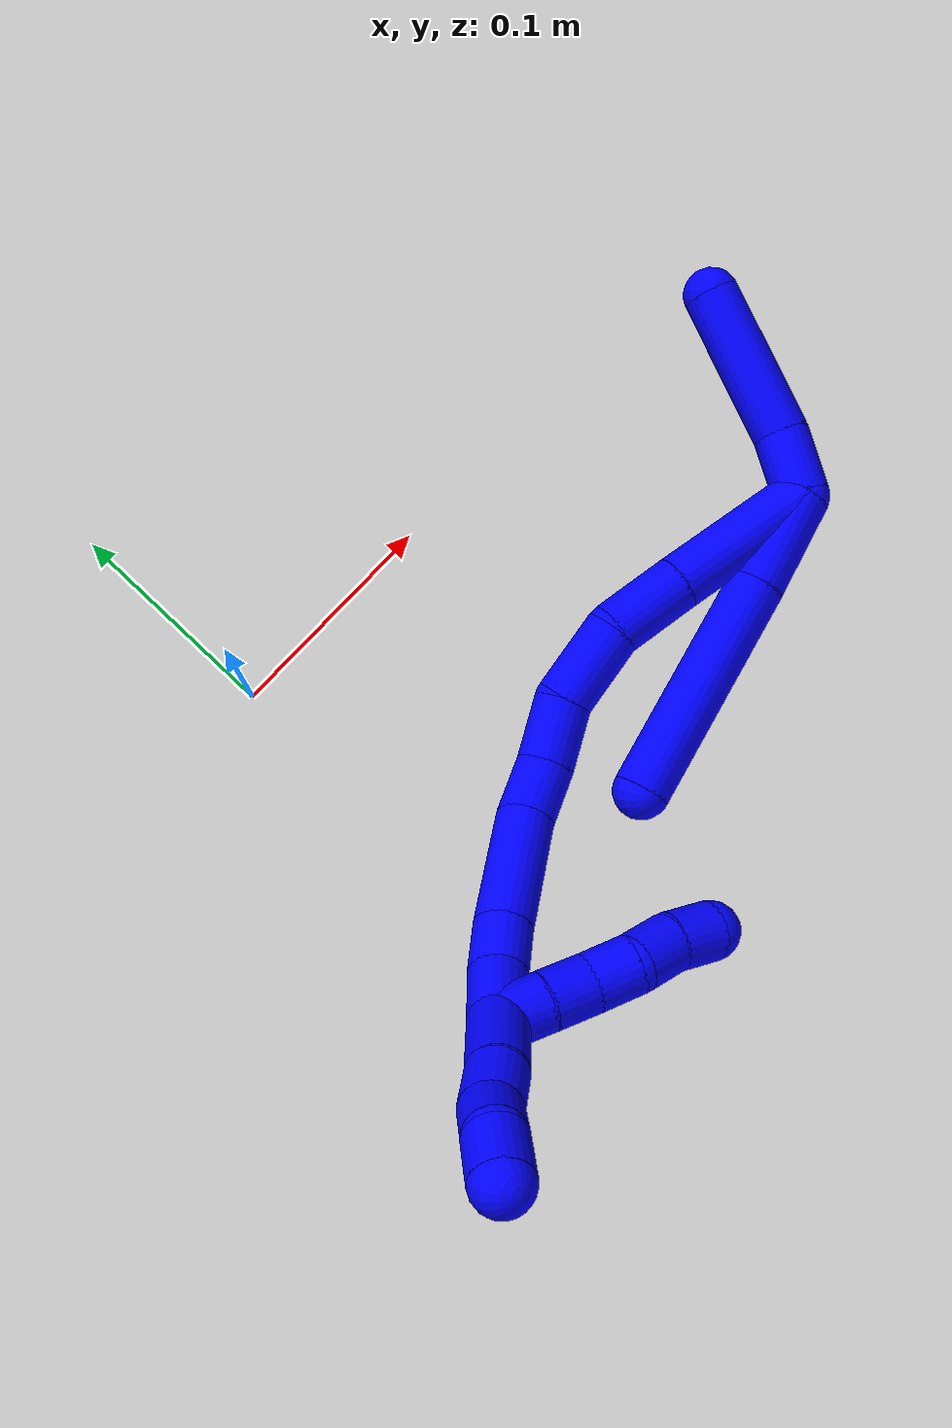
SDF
<sdf version="1.7">
 <world name="default">
  <model name="1">
   <static>0</static>
   <link name="1">
    <collision name="collision-cylinder-e_1_2_8">
     <pose>-0.022529 -0.004162 0.000281 1.50346 -1.38773 -1.32192</pose>
     <geometry><cylinder><radius>0.0125</radius><length>0.045823</length></cylinder></geometry>
     <surface>
      <friction><ode><mu>1.16</mu><mu2>1.16</mu2><slip1>0</slip1><slip2>0</slip2></ode></friction>
      <contact><ode><kp>1e+06</kp><kd>1</kd><max_vel>0</max_vel><min_depth>0.001</min_depth></ode></contact>
     </surface>
    </collision>
    <visual name="visual-cylinder-e_1_2_8">
     <pose>-0.022529 -0.004162 0.000281 1.50346 -1.38773 -1.32192</pose>
     <geometry><cylinder><radius>0.0125</radius><length>0.045823</length></cylinder></geometry>
     <material><ambient>0 0 1 1</ambient></material>
    </visual>
    <collision name="collision-cylinder-e_2_8_6">
     <pose>-0.096458 -0.016731 -0.000133 1.65324 -1.40811 -1.49001</pose>
     <geometry><cylinder><radius>0.0125</radius><length>0.104177</length></cylinder></geometry>
     <surface>
      <friction><ode><mu>1.16</mu><mu2>1.16</mu2><slip1>0</slip1><slip2>0</slip2></ode></friction>
      <contact><ode><kp>1e+06</kp><kd>1</kd><max_vel>0</max_vel><min_depth>0.001</min_depth></ode></contact>
     </surface>
    </collision>
    <visual name="visual-cylinder-e_2_8_6">
     <pose>-0.096458 -0.016731 -0.000133 1.65324 -1.40811 -1.49001</pose>
     <geometry><cylinder><radius>0.0125</radius><length>0.104177</length></cylinder></geometry>
     <material><ambient>0 0 1 1</ambient></material>
    </visual>
    <collision name="collision-cylinder-e_1_2_9">
     <pose>0.008943 0.00982 -0.006396 -2.1481 0.651829 -1.11498</pose>
     <geometry><cylinder><radius>0.0125</radius><length>0.029482</length></cylinder></geometry>
     <surface>
      <friction><ode><mu>1.16</mu><mu2>1.16</mu2><slip1>0</slip1><slip2>0</slip2></ode></friction>
      <contact><ode><kp>1e+06</kp><kd>1</kd><max_vel>0</max_vel><min_depth>0.001</min_depth></ode></contact>
     </surface>
    </collision>
    <visual name="visual-cylinder-e_1_2_9">
     <pose>0.008943 0.00982 -0.006396 -2.1481 0.651829 -1.11498</pose>
     <geometry><cylinder><radius>0.0125</radius><length>0.029482</length></cylinder></geometry>
     <material><ambient>0 0 1 1</ambient></material>
    </visual>
    <collision name="collision-cylinder-e_2_9_5">
     <pose>0.033833 0.047378 -0.027604 -2.06127 0.469348 -0.75877</pose>
     <geometry><cylinder><radius>0.0125</radius><length>0.070518</length></cylinder></geometry>
     <surface>
      <friction><ode><mu>1.16</mu><mu2>1.16</mu2><slip1>0</slip1><slip2>0</slip2></ode></friction>
      <contact><ode><kp>1e+06</kp><kd>1</kd><max_vel>0</max_vel><min_depth>0.001</min_depth></ode></contact>
     </surface>
    </collision>
    <visual name="visual-cylinder-e_2_9_5">
     <pose>0.033833 0.047378 -0.027604 -2.06127 0.469348 -0.75877</pose>
     <geometry><cylinder><radius>0.0125</radius><length>0.070518</length></cylinder></geometry>
     <material><ambient>0 0 1 1</ambient></material>
    </visual>
    <collision name="collision-cylinder-e_1_2_10">
     <pose>-0.033212 0.007775 -0.006934 -2.29911 -1.26684 2.04591</pose>
     <geometry><cylinder><radius>0.0125</radius><length>0.069616</length></cylinder></geometry>
     <surface>
      <friction><ode><mu>1.16</mu><mu2>1.16</mu2><slip1>0</slip1><slip2>0</slip2></ode></friction>
      <contact><ode><kp>1e+06</kp><kd>1</kd><max_vel>0</max_vel><min_depth>0.001</min_depth></ode></contact>
     </surface>
    </collision>
    <visual name="visual-cylinder-e_1_2_10">
     <pose>-0.033212 0.007775 -0.006934 -2.29911 -1.26684 2.04591</pose>
     <geometry><cylinder><radius>0.0125</radius><length>0.069616</length></cylinder></geometry>
     <material><ambient>0 0 1 1</ambient></material>
    </visual>
    <collision name="collision-cylinder-e_2_10_11">
     <pose>-0.083585 0.019199 -0.017356 -2.33344 -1.28473 2.1032</pose>
     <geometry><cylinder><radius>0.0125</radius><length>0.035774</length></cylinder></geometry>
     <surface>
      <friction><ode><mu>1.16</mu><mu2>1.16</mu2><slip1>0</slip1><slip2>0</slip2></ode></friction>
      <contact><ode><kp>1e+06</kp><kd>1</kd><max_vel>0</max_vel><min_depth>0.001</min_depth></ode></contact>
     </surface>
    </collision>
    <visual name="visual-cylinder-e_2_10_11">
     <pose>-0.083585 0.019199 -0.017356 -2.33344 -1.28473 2.1032</pose>
     <geometry><cylinder><radius>0.0125</radius><length>0.035774</length></cylinder></geometry>
     <material><ambient>0 0 1 1</ambient></material>
    </visual>
    <collision name="collision-cylinder-e_3_11_12">
     <pose>-0.118895 0.020358 -0.023654 2.41669 -1.36675 -2.26991</pose>
     <geometry><cylinder><radius>0.0125</radius><length>0.037068</length></cylinder></geometry>
     <surface>
      <friction><ode><mu>1.16</mu><mu2>1.16</mu2><slip1>0</slip1><slip2>0</slip2></ode></friction>
      <contact><ode><kp>1e+06</kp><kd>1</kd><max_vel>0</max_vel><min_depth>0.001</min_depth></ode></contact>
     </surface>
    </collision>
    <visual name="visual-cylinder-e_3_11_12">
     <pose>-0.118895 0.020358 -0.023654 2.41669 -1.36675 -2.26991</pose>
     <geometry><cylinder><radius>0.0125</radius><length>0.037068</length></cylinder></geometry>
     <material><ambient>0 0 1 1</ambient></material>
    </visual>
    <collision name="collision-cylinder-e_4_12_13">
     <pose>-0.150417 0.012098 -0.025567 1.41641 -1.15908 -1.0218</pose>
     <geometry><cylinder><radius>0.0125</radius><length>0.029185</length></cylinder></geometry>
     <surface>
      <friction><ode><mu>1.16</mu><mu2>1.16</mu2><slip1>0</slip1><slip2>0</slip2></ode></friction>
      <contact><ode><kp>1e+06</kp><kd>1</kd><max_vel>0</max_vel><min_depth>0.001</min_depth></ode></contact>
     </surface>
    </collision>
    <visual name="visual-cylinder-e_4_12_13">
     <pose>-0.150417 0.012098 -0.025567 1.41641 -1.15908 -1.0218</pose>
     <geometry><cylinder><radius>0.0125</radius><length>0.029185</length></cylinder></geometry>
     <material><ambient>0 0 1 1</ambient></material>
    </visual>
    <collision name="collision-cylinder-e_5_13_14">
     <pose>-0.176233 0.004559 -0.021203 0.471709 -1.26767 -0.349677</pose>
     <geometry><cylinder><radius>0.0125</radius><length>0.026074</length></cylinder></geometry>
     <surface>
      <friction><ode><mu>1.16</mu><mu2>1.16</mu2><slip1>0</slip1><slip2>0</slip2></ode></friction>
      <contact><ode><kp>1e+06</kp><kd>1</kd><max_vel>0</max_vel><min_depth>0.001</min_depth></ode></contact>
     </surface>
    </collision>
    <visual name="visual-cylinder-e_5_13_14">
     <pose>-0.176233 0.004559 -0.021203 0.471709 -1.26767 -0.349677</pose>
     <geometry><cylinder><radius>0.0125</radius><length>0.026074</length></cylinder></geometry>
     <material><ambient>0 0 1 1</ambient></material>
    </visual>
    <collision name="collision-cylinder-e_6_14_15">
     <pose>-0.211501 0.000476 -0.004216 0.16958 -1.02967 -0.096092</pose>
     <geometry><cylinder><radius>0.0125</radius><length>0.053259</length></cylinder></geometry>
     <surface>
      <friction><ode><mu>1.16</mu><mu2>1.16</mu2><slip1>0</slip1><slip2>0</slip2></ode></friction>
      <contact><ode><kp>1e+06</kp><kd>1</kd><max_vel>0</max_vel><min_depth>0.001</min_depth></ode></contact>
     </surface>
    </collision>
    <visual name="visual-cylinder-e_6_14_15">
     <pose>-0.211501 0.000476 -0.004216 0.16958 -1.02967 -0.096092</pose>
     <geometry><cylinder><radius>0.0125</radius><length>0.053259</length></cylinder></geometry>
     <material><ambient>0 0 1 1</ambient></material>
    </visual>
    <collision name="collision-cylinder-e_7_15_16">
     <pose>-0.243531 -0.00251 0.01649 0.093126 -0.905882 -0.045348</pose>
     <geometry><cylinder><radius>0.0125</radius><length>0.023395</length></cylinder></geometry>
     <surface>
      <friction><ode><mu>1.16</mu><mu2>1.16</mu2><slip1>0</slip1><slip2>0</slip2></ode></friction>
      <contact><ode><kp>1e+06</kp><kd>1</kd><max_vel>0</max_vel><min_depth>0.001</min_depth></ode></contact>
     </surface>
    </collision>
    <visual name="visual-cylinder-e_7_15_16">
     <pose>-0.243531 -0.00251 0.01649 0.093126 -0.905882 -0.045348</pose>
     <geometry><cylinder><radius>0.0125</radius><length>0.023395</length></cylinder></geometry>
     <material><ambient>0 0 1 1</ambient></material>
    </visual>
    <collision name="collision-cylinder-e_8_16_1">
     <pose>-0.260879 -0.002385 0.033539 -0.080592 -0.68852 0.028909</pose>
     <geometry><cylinder><radius>0.0125</radius><length>0.025629</length></cylinder></geometry>
     <surface>
      <friction><ode><mu>1.16</mu><mu2>1.16</mu2><slip1>0</slip1><slip2>0</slip2></ode></friction>
      <contact><ode><kp>1e+06</kp><kd>1</kd><max_vel>0</max_vel><min_depth>0.001</min_depth></ode></contact>
     </surface>
    </collision>
    <visual name="visual-cylinder-e_8_16_1">
     <pose>-0.260879 -0.002385 0.033539 -0.080592 -0.68852 0.028909</pose>
     <geometry><cylinder><radius>0.0125</radius><length>0.025629</length></cylinder></geometry>
     <material><ambient>0 0 1 1</ambient></material>
    </visual>
    <collision name="collision-cylinder-e_1_1_17">
     <pose>-0.278454 0.002973 0.058176 -0.299439 -0.547786 0.084712</pose>
     <geometry><cylinder><radius>0.0125</radius><length>0.036225</length></cylinder></geometry>
     <surface>
      <friction><ode><mu>1.16</mu><mu2>1.16</mu2><slip1>0</slip1><slip2>0</slip2></ode></friction>
      <contact><ode><kp>1e+06</kp><kd>1</kd><max_vel>0</max_vel><min_depth>0.001</min_depth></ode></contact>
     </surface>
    </collision>
    <visual name="visual-cylinder-e_1_1_17">
     <pose>-0.278454 0.002973 0.058176 -0.299439 -0.547786 0.084712</pose>
     <geometry><cylinder><radius>0.0125</radius><length>0.036225</length></cylinder></geometry>
     <material><ambient>0 0 1 1</ambient></material>
    </visual>
    <collision name="collision-cylinder-e_2_17_18">
     <pose>-0.294756 0.010151 0.080974 -0.315218 -0.683129 0.112876</pose>
     <geometry><cylinder><radius>0.0125</radius><length>0.021763</length></cylinder></geometry>
     <surface>
      <friction><ode><mu>1.16</mu><mu2>1.16</mu2><slip1>0</slip1><slip2>0</slip2></ode></friction>
      <contact><ode><kp>1e+06</kp><kd>1</kd><max_vel>0</max_vel><min_depth>0.001</min_depth></ode></contact>
     </surface>
    </collision>
    <visual name="visual-cylinder-e_2_17_18">
     <pose>-0.294756 0.010151 0.080974 -0.315218 -0.683129 0.112876</pose>
     <geometry><cylinder><radius>0.0125</radius><length>0.021763</length></cylinder></geometry>
     <material><ambient>0 0 1 1</ambient></material>
    </visual>
    <collision name="collision-cylinder-e_3_18_19">
     <pose>-0.305541 0.015888 0.098092 -0.330553 -0.386881 0.065325</pose>
     <geometry><cylinder><radius>0.0125</radius><length>0.020763</length></cylinder></geometry>
     <surface>
      <friction><ode><mu>1.16</mu><mu2>1.16</mu2><slip1>0</slip1><slip2>0</slip2></ode></friction>
      <contact><ode><kp>1e+06</kp><kd>1</kd><max_vel>0</max_vel><min_depth>0.001</min_depth></ode></contact>
     </surface>
    </collision>
    <visual name="visual-cylinder-e_3_18_19">
     <pose>-0.305541 0.015888 0.098092 -0.330553 -0.386881 0.065325</pose>
     <geometry><cylinder><radius>0.0125</radius><length>0.020763</length></cylinder></geometry>
     <material><ambient>0 0 1 1</ambient></material>
    </visual>
    <collision name="collision-cylinder-e_4_19_4">
     <pose>-0.315362 0.019299 0.116015 -0.032896 -0.589151 0.009982</pose>
     <geometry><cylinder><radius>0.0125</radius><length>0.021249</length></cylinder></geometry>
     <surface>
      <friction><ode><mu>1.16</mu><mu2>1.16</mu2><slip1>0</slip1><slip2>0</slip2></ode></friction>
      <contact><ode><kp>1e+06</kp><kd>1</kd><max_vel>0</max_vel><min_depth>0.001</min_depth></ode></contact>
     </surface>
    </collision>
    <visual name="visual-cylinder-e_4_19_4">
     <pose>-0.315362 0.019299 0.116015 -0.032896 -0.589151 0.009982</pose>
     <geometry><cylinder><radius>0.0125</radius><length>0.021249</length></cylinder></geometry>
     <material><ambient>0 0 1 1</ambient></material>
    </visual>
    <collision name="collision-cylinder-e_1_1_20">
     <pose>-0.260533 -0.00646 0.045457 1.17157 1.01369 0.705897</pose>
     <geometry><cylinder><radius>0.0125</radius><length>0.02</length></cylinder></geometry>
     <surface>
      <friction><ode><mu>1.16</mu><mu2>1.16</mu2><slip1>0</slip1><slip2>0</slip2></ode></friction>
      <contact><ode><kp>1e+06</kp><kd>1</kd><max_vel>0</max_vel><min_depth>0.001</min_depth></ode></contact>
     </surface>
    </collision>
    <visual name="visual-cylinder-e_1_1_20">
     <pose>-0.260533 -0.00646 0.045457 1.17157 1.01369 0.705897</pose>
     <geometry><cylinder><radius>0.0125</radius><length>0.02</length></cylinder></geometry>
     <material><ambient>0 0 1 1</ambient></material>
    </visual>
    <collision name="collision-cylinder-e_2_20_21">
     <pose>-0.243615 -0.01654 0.048856 1.3184 1.00285 0.803274</pose>
     <geometry><cylinder><radius>0.0125</radius><length>0.02</length></cylinder></geometry>
     <surface>
      <friction><ode><mu>1.16</mu><mu2>1.16</mu2><slip1>0</slip1><slip2>0</slip2></ode></friction>
      <contact><ode><kp>1e+06</kp><kd>1</kd><max_vel>0</max_vel><min_depth>0.001</min_depth></ode></contact>
     </surface>
    </collision>
    <visual name="visual-cylinder-e_2_20_21">
     <pose>-0.243615 -0.01654 0.048856 1.3184 1.00285 0.803274</pose>
     <geometry><cylinder><radius>0.0125</radius><length>0.02</length></cylinder></geometry>
     <material><ambient>0 0 1 1</ambient></material>
    </visual>
    <collision name="collision-cylinder-e_3_21_22">
     <pose>-0.226511 -0.026032 0.052731 1.03696 1.0499 0.638274</pose>
     <geometry><cylinder><radius>0.0125</radius><length>0.02</length></cylinder></geometry>
     <surface>
      <friction><ode><mu>1.16</mu><mu2>1.16</mu2><slip1>0</slip1><slip2>0</slip2></ode></friction>
      <contact><ode><kp>1e+06</kp><kd>1</kd><max_vel>0</max_vel><min_depth>0.001</min_depth></ode></contact>
     </surface>
    </collision>
    <visual name="visual-cylinder-e_3_21_22">
     <pose>-0.226511 -0.026032 0.052731 1.03696 1.0499 0.638274</pose>
     <geometry><cylinder><radius>0.0125</radius><length>0.02</length></cylinder></geometry>
     <material><ambient>0 0 1 1</ambient></material>
    </visual>
    <collision name="collision-cylinder-e_4_22_23">
     <pose>-0.209254 -0.035376 0.054413 1.73742 1.03202 1.18151</pose>
     <geometry><cylinder><radius>0.0125</radius><length>0.02</length></cylinder></geometry>
     <surface>
      <friction><ode><mu>1.16</mu><mu2>1.16</mu2><slip1>0</slip1><slip2>0</slip2></ode></friction>
      <contact><ode><kp>1e+06</kp><kd>1</kd><max_vel>0</max_vel><min_depth>0.001</min_depth></ode></contact>
     </surface>
    </collision>
    <visual name="visual-cylinder-e_4_22_23">
     <pose>-0.209254 -0.035376 0.054413 1.73742 1.03202 1.18151</pose>
     <geometry><cylinder><radius>0.0125</radius><length>0.02</length></cylinder></geometry>
     <material><ambient>0 0 1 1</ambient></material>
    </visual>
    <collision name="collision-cylinder-e_5_23_3">
     <pose>-0.19308 -0.046935 0.053931 1.51396 0.86199 0.819625</pose>
     <geometry><cylinder><radius>0.0125</radius><length>0.02</length></cylinder></geometry>
     <surface>
      <friction><ode><mu>1.16</mu><mu2>1.16</mu2><slip1>0</slip1><slip2>0</slip2></ode></friction>
      <contact><ode><kp>1e+06</kp><kd>1</kd><max_vel>0</max_vel><min_depth>0.001</min_depth></ode></contact>
     </surface>
    </collision>
    <visual name="visual-cylinder-e_5_23_3">
     <pose>-0.19308 -0.046935 0.053931 1.51396 0.86199 0.819625</pose>
     <geometry><cylinder><radius>0.0125</radius><length>0.02</length></cylinder></geometry>
     <material><ambient>0 0 1 1</ambient></material>
    </visual>
    <collision name="collision-sphere-3">
     <pose>-0.185488 -0.053434 0.054301 0 -0 0</pose>
     <geometry><sphere><radius>0.0125</radius></sphere></geometry>
     <surface>
      <friction><ode><mu>1.16</mu><mu2>1.16</mu2><slip1>0</slip1><slip2>0</slip2></ode></friction>
      <contact><ode><kp>1e+06</kp><kd>1</kd><max_vel>0</max_vel><min_depth>0.001</min_depth></ode></contact>
     </surface>
    </collision>
    <visual name="visual-sphere-3">
     <pose>-0.185488 -0.053434 0.054301 0 -0 0</pose>
     <geometry><sphere><radius>0.0125</radius></sphere></geometry>
     <material><ambient>0 0 1 1</ambient></material>
    </visual>
    <collision name="collision-sphere-23">
     <pose>-0.200671 -0.040436 0.053562 0 -0 0</pose>
     <geometry><sphere><radius>0.0125</radius></sphere></geometry>
     <surface>
      <friction><ode><mu>1.16</mu><mu2>1.16</mu2><slip1>0</slip1><slip2>0</slip2></ode></friction>
      <contact><ode><kp>1e+06</kp><kd>1</kd><max_vel>0</max_vel><min_depth>0.001</min_depth></ode></contact>
     </surface>
    </collision>
    <visual name="visual-sphere-23">
     <pose>-0.200671 -0.040436 0.053562 0 -0 0</pose>
     <geometry><sphere><radius>0.0125</radius></sphere></geometry>
     <material><ambient>0 0 1 1</ambient></material>
    </visual>
    <collision name="collision-sphere-22">
     <pose>-0.217838 -0.030317 0.055264 0 -0 0</pose>
     <geometry><sphere><radius>0.0125</radius></sphere></geometry>
     <surface>
      <friction><ode><mu>1.16</mu><mu2>1.16</mu2><slip1>0</slip1><slip2>0</slip2></ode></friction>
      <contact><ode><kp>1e+06</kp><kd>1</kd><max_vel>0</max_vel><min_depth>0.001</min_depth></ode></contact>
     </surface>
    </collision>
    <visual name="visual-sphere-22">
     <pose>-0.217838 -0.030317 0.055264 0 -0 0</pose>
     <geometry><sphere><radius>0.0125</radius></sphere></geometry>
     <material><ambient>0 0 1 1</ambient></material>
    </visual>
    <collision name="collision-sphere-21">
     <pose>-0.235185 -0.021748 0.050199 0 -0 0</pose>
     <geometry><sphere><radius>0.0125</radius></sphere></geometry>
     <surface>
      <friction><ode><mu>1.16</mu><mu2>1.16</mu2><slip1>0</slip1><slip2>0</slip2></ode></friction>
      <contact><ode><kp>1e+06</kp><kd>1</kd><max_vel>0</max_vel><min_depth>0.001</min_depth></ode></contact>
     </surface>
    </collision>
    <visual name="visual-sphere-21">
     <pose>-0.235185 -0.021748 0.050199 0 -0 0</pose>
     <geometry><sphere><radius>0.0125</radius></sphere></geometry>
     <material><ambient>0 0 1 1</ambient></material>
    </visual>
    <collision name="collision-sphere-20">
     <pose>-0.252045 -0.011331 0.047513 0 -0 0</pose>
     <geometry><sphere><radius>0.0125</radius></sphere></geometry>
     <surface>
      <friction><ode><mu>1.16</mu><mu2>1.16</mu2><slip1>0</slip1><slip2>0</slip2></ode></friction>
      <contact><ode><kp>1e+06</kp><kd>1</kd><max_vel>0</max_vel><min_depth>0.001</min_depth></ode></contact>
     </surface>
    </collision>
    <visual name="visual-sphere-20">
     <pose>-0.252045 -0.011331 0.047513 0 -0 0</pose>
     <geometry><sphere><radius>0.0125</radius></sphere></geometry>
     <material><ambient>0 0 1 1</ambient></material>
    </visual>
    <collision name="collision-sphere-4">
     <pose>-0.321265 0.019589 0.124843 0 -0 0</pose>
     <geometry><sphere><radius>0.0125</radius></sphere></geometry>
     <surface>
      <friction><ode><mu>1.16</mu><mu2>1.16</mu2><slip1>0</slip1><slip2>0</slip2></ode></friction>
      <contact><ode><kp>1e+06</kp><kd>1</kd><max_vel>0</max_vel><min_depth>0.001</min_depth></ode></contact>
     </surface>
    </collision>
    <visual name="visual-sphere-4">
     <pose>-0.321265 0.019589 0.124843 0 -0 0</pose>
     <geometry><sphere><radius>0.0125</radius></sphere></geometry>
     <material><ambient>0 0 1 1</ambient></material>
    </visual>
    <collision name="collision-sphere-10">
     <pose>-0.066425 0.01555 -0.013869 0 -0 0</pose>
     <geometry><sphere><radius>0.0125</radius></sphere></geometry>
     <surface>
      <friction><ode><mu>1.16</mu><mu2>1.16</mu2><slip1>0</slip1><slip2>0</slip2></ode></friction>
      <contact><ode><kp>1e+06</kp><kd>1</kd><max_vel>0</max_vel><min_depth>0.001</min_depth></ode></contact>
     </surface>
    </collision>
    <visual name="visual-sphere-10">
     <pose>-0.066425 0.01555 -0.013869 0 -0 0</pose>
     <geometry><sphere><radius>0.0125</radius></sphere></geometry>
     <material><ambient>0 0 1 1</ambient></material>
    </visual>
    <collision name="collision-sphere-5">
     <pose>0.049781 0.075117 -0.042417 0 -0 0</pose>
     <geometry><sphere><radius>0.0125</radius></sphere></geometry>
     <surface>
      <friction><ode><mu>1.16</mu><mu2>1.16</mu2><slip1>0</slip1><slip2>0</slip2></ode></friction>
      <contact><ode><kp>1e+06</kp><kd>1</kd><max_vel>0</max_vel><min_depth>0.001</min_depth></ode></contact>
     </surface>
    </collision>
    <visual name="visual-sphere-5">
     <pose>0.049781 0.075117 -0.042417 0 -0 0</pose>
     <geometry><sphere><radius>0.0125</radius></sphere></geometry>
     <material><ambient>0 0 1 1</ambient></material>
    </visual>
    <collision name="collision-sphere-6">
     <pose>-0.147859 -0.02514 -0.000828 0 -0 0</pose>
     <geometry><sphere><radius>0.0125</radius></sphere></geometry>
     <surface>
      <friction><ode><mu>1.16</mu><mu2>1.16</mu2><slip1>0</slip1><slip2>0</slip2></ode></friction>
      <contact><ode><kp>1e+06</kp><kd>1</kd><max_vel>0</max_vel><min_depth>0.001</min_depth></ode></contact>
     </surface>
    </collision>
    <visual name="visual-sphere-6">
     <pose>-0.147859 -0.02514 -0.000828 0 -0 0</pose>
     <geometry><sphere><radius>0.0125</radius></sphere></geometry>
     <material><ambient>0 0 1 1</ambient></material>
    </visual>
    <collision name="collision-sphere-9">
     <pose>0.017885 0.019639 -0.012792 0 -0 0</pose>
     <geometry><sphere><radius>0.0125</radius></sphere></geometry>
     <surface>
      <friction><ode><mu>1.16</mu><mu2>1.16</mu2><slip1>0</slip1><slip2>0</slip2></ode></friction>
      <contact><ode><kp>1e+06</kp><kd>1</kd><max_vel>0</max_vel><min_depth>0.001</min_depth></ode></contact>
     </surface>
    </collision>
    <visual name="visual-sphere-9">
     <pose>0.017885 0.019639 -0.012792 0 -0 0</pose>
     <geometry><sphere><radius>0.0125</radius></sphere></geometry>
     <material><ambient>0 0 1 1</ambient></material>
    </visual>
    <collision name="collision-sphere-2">
     <geometry><sphere><radius>0.0125</radius></sphere></geometry>
     <surface>
      <friction><ode><mu>1.16</mu><mu2>1.16</mu2><slip1>0</slip1><slip2>0</slip2></ode></friction>
      <contact><ode><kp>1e+06</kp><kd>1</kd><max_vel>0</max_vel><min_depth>0.001</min_depth></ode></contact>
     </surface>
    </collision>
    <visual name="visual-sphere-2">
     <geometry><sphere><radius>0.0125</radius></sphere></geometry>
     <material><ambient>0 0 1 1</ambient></material>
    </visual>
    <collision name="collision-sphere-19">
     <pose>-0.309458 0.019008 0.107186 0 -0 0</pose>
     <geometry><sphere><radius>0.0125</radius></sphere></geometry>
     <surface>
      <friction><ode><mu>1.16</mu><mu2>1.16</mu2><slip1>0</slip1><slip2>0</slip2></ode></friction>
      <contact><ode><kp>1e+06</kp><kd>1</kd><max_vel>0</max_vel><min_depth>0.001</min_depth></ode></contact>
     </surface>
    </collision>
    <visual name="visual-sphere-19">
     <pose>-0.309458 0.019008 0.107186 0 -0 0</pose>
     <geometry><sphere><radius>0.0125</radius></sphere></geometry>
     <material><ambient>0 0 1 1</ambient></material>
    </visual>
    <collision name="collision-sphere-8">
     <pose>-0.045057 -0.008323 0.000561 0 -0 0</pose>
     <geometry><sphere><radius>0.0125</radius></sphere></geometry>
     <surface>
      <friction><ode><mu>1.16</mu><mu2>1.16</mu2><slip1>0</slip1><slip2>0</slip2></ode></friction>
      <contact><ode><kp>1e+06</kp><kd>1</kd><max_vel>0</max_vel><min_depth>0.001</min_depth></ode></contact>
     </surface>
    </collision>
    <visual name="visual-sphere-8">
     <pose>-0.045057 -0.008323 0.000561 0 -0 0</pose>
     <geometry><sphere><radius>0.0125</radius></sphere></geometry>
     <material><ambient>0 0 1 1</ambient></material>
    </visual>
    <collision name="collision-sphere-11">
     <pose>-0.100745 0.022849 -0.020842 0 -0 0</pose>
     <geometry><sphere><radius>0.0125</radius></sphere></geometry>
     <surface>
      <friction><ode><mu>1.16</mu><mu2>1.16</mu2><slip1>0</slip1><slip2>0</slip2></ode></friction>
      <contact><ode><kp>1e+06</kp><kd>1</kd><max_vel>0</max_vel><min_depth>0.001</min_depth></ode></contact>
     </surface>
    </collision>
    <visual name="visual-sphere-11">
     <pose>-0.100745 0.022849 -0.020842 0 -0 0</pose>
     <geometry><sphere><radius>0.0125</radius></sphere></geometry>
     <material><ambient>0 0 1 1</ambient></material>
    </visual>
    <collision name="collision-sphere-12">
     <pose>-0.137044 0.017868 -0.026465 0 -0 0</pose>
     <geometry><sphere><radius>0.0125</radius></sphere></geometry>
     <surface>
      <friction><ode><mu>1.16</mu><mu2>1.16</mu2><slip1>0</slip1><slip2>0</slip2></ode></friction>
      <contact><ode><kp>1e+06</kp><kd>1</kd><max_vel>0</max_vel><min_depth>0.001</min_depth></ode></contact>
     </surface>
    </collision>
    <visual name="visual-sphere-12">
     <pose>-0.137044 0.017868 -0.026465 0 -0 0</pose>
     <geometry><sphere><radius>0.0125</radius></sphere></geometry>
     <material><ambient>0 0 1 1</ambient></material>
    </visual>
    <collision name="collision-sphere-13">
     <pose>-0.16379 0.006328 -0.024669 0 -0 0</pose>
     <geometry><sphere><radius>0.0125</radius></sphere></geometry>
     <surface>
      <friction><ode><mu>1.16</mu><mu2>1.16</mu2><slip1>0</slip1><slip2>0</slip2></ode></friction>
      <contact><ode><kp>1e+06</kp><kd>1</kd><max_vel>0</max_vel><min_depth>0.001</min_depth></ode></contact>
     </surface>
    </collision>
    <visual name="visual-sphere-13">
     <pose>-0.16379 0.006328 -0.024669 0 -0 0</pose>
     <geometry><sphere><radius>0.0125</radius></sphere></geometry>
     <material><ambient>0 0 1 1</ambient></material>
    </visual>
    <collision name="collision-sphere-14">
     <pose>-0.188676 0.002791 -0.017736 0 -0 0</pose>
     <geometry><sphere><radius>0.0125</radius></sphere></geometry>
     <surface>
      <friction><ode><mu>1.16</mu><mu2>1.16</mu2><slip1>0</slip1><slip2>0</slip2></ode></friction>
      <contact><ode><kp>1e+06</kp><kd>1</kd><max_vel>0</max_vel><min_depth>0.001</min_depth></ode></contact>
     </surface>
    </collision>
    <visual name="visual-sphere-14">
     <pose>-0.188676 0.002791 -0.017736 0 -0 0</pose>
     <geometry><sphere><radius>0.0125</radius></sphere></geometry>
     <material><ambient>0 0 1 1</ambient></material>
    </visual>
    <collision name="collision-sphere-15">
     <pose>-0.234325 -0.001839 0.009304 0 -0 0</pose>
     <geometry><sphere><radius>0.0125</radius></sphere></geometry>
     <surface>
      <friction><ode><mu>1.16</mu><mu2>1.16</mu2><slip1>0</slip1><slip2>0</slip2></ode></friction>
      <contact><ode><kp>1e+06</kp><kd>1</kd><max_vel>0</max_vel><min_depth>0.001</min_depth></ode></contact>
     </surface>
    </collision>
    <visual name="visual-sphere-15">
     <pose>-0.234325 -0.001839 0.009304 0 -0 0</pose>
     <geometry><sphere><radius>0.0125</radius></sphere></geometry>
     <material><ambient>0 0 1 1</ambient></material>
    </visual>
    <collision name="collision-sphere-16">
     <pose>-0.252737 -0.003181 0.023676 0 -0 0</pose>
     <geometry><sphere><radius>0.0125</radius></sphere></geometry>
     <surface>
      <friction><ode><mu>1.16</mu><mu2>1.16</mu2><slip1>0</slip1><slip2>0</slip2></ode></friction>
      <contact><ode><kp>1e+06</kp><kd>1</kd><max_vel>0</max_vel><min_depth>0.001</min_depth></ode></contact>
     </surface>
    </collision>
    <visual name="visual-sphere-16">
     <pose>-0.252737 -0.003181 0.023676 0 -0 0</pose>
     <geometry><sphere><radius>0.0125</radius></sphere></geometry>
     <material><ambient>0 0 1 1</ambient></material>
    </visual>
    <collision name="collision-sphere-1">
     <pose>-0.269021 -0.001588 0.043402 0 -0 0</pose>
     <geometry><sphere><radius>0.0125</radius></sphere></geometry>
     <surface>
      <friction><ode><mu>1.16</mu><mu2>1.16</mu2><slip1>0</slip1><slip2>0</slip2></ode></friction>
      <contact><ode><kp>1e+06</kp><kd>1</kd><max_vel>0</max_vel><min_depth>0.001</min_depth></ode></contact>
     </surface>
    </collision>
    <visual name="visual-sphere-1">
     <pose>-0.269021 -0.001588 0.043402 0 -0 0</pose>
     <geometry><sphere><radius>0.0125</radius></sphere></geometry>
     <material><ambient>0 0 1 1</ambient></material>
    </visual>
    <collision name="collision-sphere-18">
     <pose>-0.301624 0.012767 0.088998 0 -0 0</pose>
     <geometry><sphere><radius>0.0125</radius></sphere></geometry>
     <surface>
      <friction><ode><mu>1.16</mu><mu2>1.16</mu2><slip1>0</slip1><slip2>0</slip2></ode></friction>
      <contact><ode><kp>1e+06</kp><kd>1</kd><max_vel>0</max_vel><min_depth>0.001</min_depth></ode></contact>
     </surface>
    </collision>
    <visual name="visual-sphere-18">
     <pose>-0.301624 0.012767 0.088998 0 -0 0</pose>
     <geometry><sphere><radius>0.0125</radius></sphere></geometry>
     <material><ambient>0 0 1 1</ambient></material>
    </visual>
    <collision name="collision-sphere-17">
     <pose>-0.287887 0.007534 0.07295 0 -0 0</pose>
     <geometry><sphere><radius>0.0125</radius></sphere></geometry>
     <surface>
      <friction><ode><mu>1.16</mu><mu2>1.16</mu2><slip1>0</slip1><slip2>0</slip2></ode></friction>
      <contact><ode><kp>1e+06</kp><kd>1</kd><max_vel>0</max_vel><min_depth>0.001</min_depth></ode></contact>
     </surface>
    </collision>
    <visual name="visual-sphere-17">
     <pose>-0.287887 0.007534 0.07295 0 -0 0</pose>
     <geometry><sphere><radius>0.0125</radius></sphere></geometry>
     <material><ambient>0 0 1 1</ambient></material>
    </visual>
    <inertial>
     <pose>-0.137307 0.003332 0.012113 0 -0 0</pose>
     <mass>0.75</mass>
     <inertia>
      <ixx>-1.5e-05</ixx>
      <ixy>0</ixy>
      <ixz>0</ixz>
      <iyy>0.000155</iyy>
      <iyz>0</iyz>
      <izz>0.000145</izz>
     </inertia>
    </inertial>
   </link>
   <pose>0.229656 -0.116066 0.012471 0.641804 0.099299 0.114296</pose>
  </model>
 </world>
</sdf>
